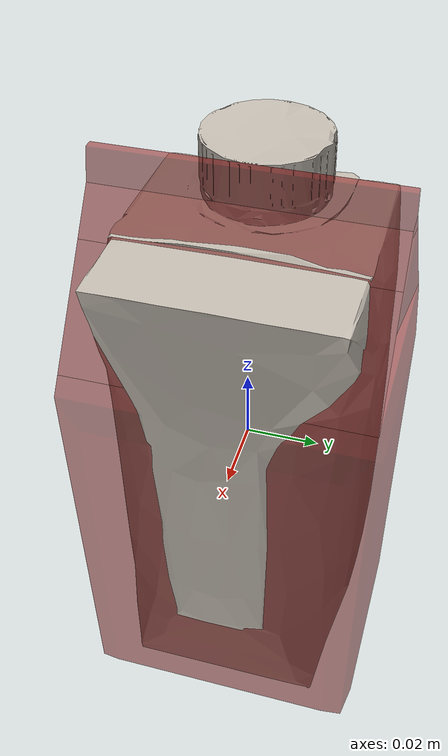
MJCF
<?xml version='1.0' encoding='utf-8'?>
<mujoco model="milk_23">
  <asset>
    <mesh file="visual/model_normalized_0.obj" name="model_normalized_0_vis" scale="0.16499999999999995 0.16499999999999995 0.16499999999999995" refquat="0.7071067811865475 0.0 0.0 0.7071067811865476" />
    <texture type="2d" name="image0" file="visual/image0.png" />
    <material name="lambert2.003" texture="image0" specular="0.5" shininess="0.359999993" />
    <mesh file="collision/collision_mesh_collision_0.obj" name="milk_collision_mesh_0" scale="0.16499999999999995 0.16499999999999995 0.16499999999999995" refquat="0.7071067811865475 0.0 0.0 0.7071067811865476" />
    <mesh file="collision/collision_mesh_collision_1.obj" name="milk_collision_mesh_1" scale="0.16499999999999995 0.16499999999999995 0.16499999999999995" refquat="0.7071067811865475 0.0 0.0 0.7071067811865476" />
    <mesh file="collision/collision_mesh_collision_2.obj" name="milk_collision_mesh_2" scale="0.16499999999999995 0.16499999999999995 0.16499999999999995" refquat="0.7071067811865475 0.0 0.0 0.7071067811865476" />
    <mesh file="collision/collision_mesh_collision_3.obj" name="milk_collision_mesh_3" scale="0.16499999999999995 0.16499999999999995 0.16499999999999995" refquat="0.7071067811865475 0.0 0.0 0.7071067811865476" />
    <mesh file="collision/collision_mesh_collision_4.obj" name="milk_collision_mesh_4" scale="0.16499999999999995 0.16499999999999995 0.16499999999999995" refquat="0.7071067811865475 0.0 0.0 0.7071067811865476" />
    <mesh file="collision/collision_mesh_collision_5.obj" name="milk_collision_mesh_5" scale="0.16499999999999995 0.16499999999999995 0.16499999999999995" refquat="0.7071067811865475 0.0 0.0 0.7071067811865476" />
    <mesh file="collision/collision_mesh_collision_6.obj" name="milk_collision_mesh_6" scale="0.16499999999999995 0.16499999999999995 0.16499999999999995" refquat="0.7071067811865475 0.0 0.0 0.7071067811865476" />
  </asset>
  <default>
    <default class="region">
      <geom group="1" conaffinity="0" contype="0" rgba="0 1 0 0" mass="0" />
    </default>
    <default class="collision">
      <geom group="0" rgba="0.5 0 0 0.5" density="624.797619780" />
    </default>
  </default>
  <worldbody>
    <body>
      <body name="object">
        <geom solimp="0.998 0.998 0.001" solref="0.001 1" density="62.479761978" friction="0.95 0.3 0.1" type="mesh" mesh="model_normalized_0_vis" conaffinity="0" contype="0" group="1" material="lambert2.003" />
        <geom class="region" name="reg_bbox" type="box" pos="0.0 0.0 0.0" size="0.03585953084999999 0.04125989834999999 0.08249999999999998" />
        <geom mesh="milk_collision_mesh_0" type="mesh" class="collision" />
        <geom mesh="milk_collision_mesh_1" type="mesh" class="collision" />
        <geom mesh="milk_collision_mesh_2" type="mesh" class="collision" />
        <geom mesh="milk_collision_mesh_3" type="mesh" class="collision" />
        <geom mesh="milk_collision_mesh_4" type="mesh" class="collision" />
        <geom mesh="milk_collision_mesh_5" type="mesh" class="collision" />
        <geom mesh="milk_collision_mesh_6" type="mesh" class="collision" />
      </body>
    </body>
  </worldbody>
</mujoco>
